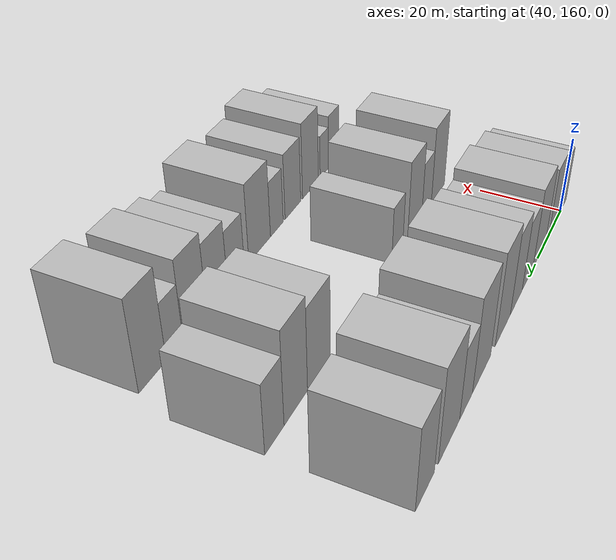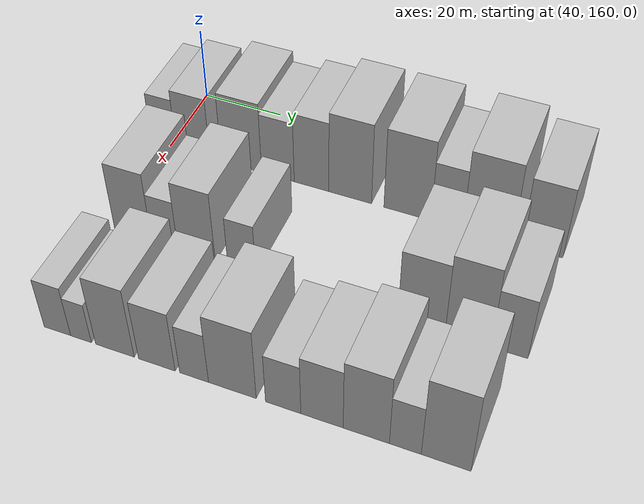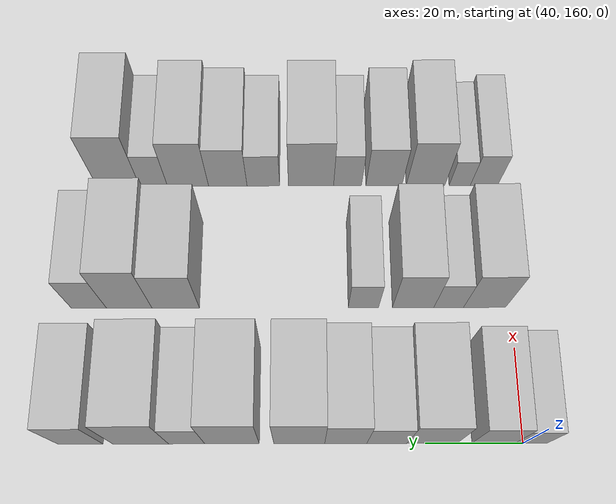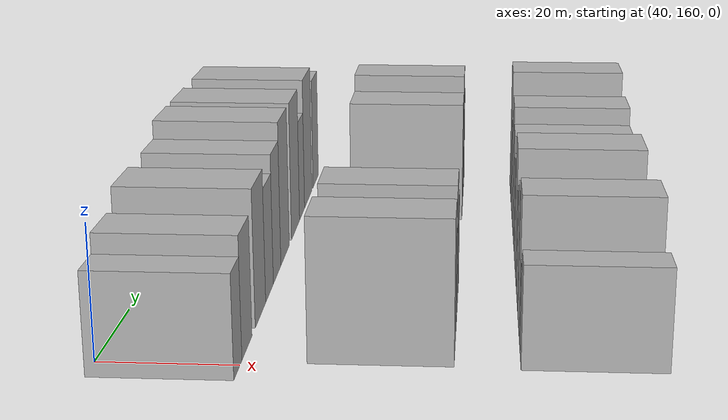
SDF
<sdf version="1.6">
 <world name="default">
  <model name="building_58">
   <static>1</static>
   <pose>50.0000 158.2829 0 0.000000 0.000000 0.000000</pose>
   <link name="link">
    <pose>0 0 7.50 0 0 0</pose>
    <collision name="collision"><geometry><box><size>20.0000 6.6665 15.0000</size></box></geometry></collision>
    <visual name="visual">
     <cast_shadows>0</cast_shadows>
     <geometry><box><size>20.0000 6.6665 15.0000</size></box></geometry>
     <material>
      <script>
       <uri>model://HANNAS_wall/materials/scripts</uri>
       <uri>model://HANNAS_wall/materials/textures</uri>
       <name>vrc/HANNAS_wall</name>
      </script>
     </material>
    </visual>
   </link>
  </model>
  <model name="building_59">
   <static>1</static>
   <pose>50.0000 166.0551 0 0.000000 0.000000 0.000000</pose>
   <link name="link">
    <pose>0 0 9.00 0 0 0</pose>
    <collision name="collision"><geometry><box><size>20.0000 8.8780 18.0000</size></box></geometry></collision>
    <visual name="visual">
     <cast_shadows>0</cast_shadows>
     <geometry><box><size>20.0000 8.8780 18.0000</size></box></geometry>
     <material>
      <script>
       <uri>model://HANNAS_wall/materials/scripts</uri>
       <uri>model://HANNAS_wall/materials/textures</uri>
       <name>vrc/HANNAS_wall</name>
      </script>
     </material>
    </visual>
   </link>
  </model>
  <model name="building_60">
   <static>1</static>
   <pose>50.0000 178.6705 0 0.000000 0.000000 0.000000</pose>
   <link name="link">
    <pose>0 0 10.50 0 0 0</pose>
    <collision name="collision"><geometry><box><size>20.0000 10.3527 21.0000</size></box></geometry></collision>
    <visual name="visual">
     <cast_shadows>0</cast_shadows>
     <geometry><box><size>20.0000 10.3527 21.0000</size></box></geometry>
     <material>
      <script>
       <uri>model://HANNAS_wall/materials/scripts</uri>
       <uri>model://HANNAS_wall/materials/textures</uri>
       <name>vrc/HANNAS_wall</name>
      </script>
     </material>
    </visual>
   </link>
  </model>
  <model name="building_61">
   <static>1</static>
   <pose>50.0000 187.9829 0 0.000000 0.000000 0.000000</pose>
   <link name="link">
    <pose>0 0 9.00 0 0 0</pose>
    <collision name="collision"><geometry><box><size>20.0000 8.2720 18.0000</size></box></geometry></collision>
    <visual name="visual">
     <cast_shadows>0</cast_shadows>
     <geometry><box><size>20.0000 8.2720 18.0000</size></box></geometry>
     <material>
      <script>
       <uri>model://HANNAS_wall/materials/scripts</uri>
       <uri>model://HANNAS_wall/materials/textures</uri>
       <name>vrc/HANNAS_wall</name>
      </script>
     </material>
    </visual>
   </link>
  </model>
  <model name="building_62">
   <static>1</static>
   <pose>50.0000 196.4425 0 0.000000 0.000000 0.000000</pose>
   <link name="link">
    <pose>0 0 10.50 0 0 0</pose>
    <collision name="collision"><geometry><box><size>20.0000 8.6472 21.0000</size></box></geometry></collision>
    <visual name="visual">
     <cast_shadows>0</cast_shadows>
     <geometry><box><size>20.0000 8.6472 21.0000</size></box></geometry>
     <material>
      <script>
       <uri>model://HANNAS_wall/materials/scripts</uri>
       <uri>model://HANNAS_wall/materials/textures</uri>
       <name>vrc/HANNAS_wall</name>
      </script>
     </material>
    </visual>
   </link>
  </model>
  <model name="building_63">
   <static>1</static>
   <pose>50.0000 205.9743 0 0.000000 0.000000 0.000000</pose>
   <link name="link">
    <pose>0 0 12.00 0 0 0</pose>
    <collision name="collision"><geometry><box><size>20.0000 10.4166 24.0000</size></box></geometry></collision>
    <visual name="visual">
     <cast_shadows>0</cast_shadows>
     <geometry><box><size>20.0000 10.4166 24.0000</size></box></geometry>
     <material>
      <script>
       <uri>model://HANNAS_wall/materials/scripts</uri>
       <uri>model://HANNAS_wall/materials/textures</uri>
       <name>vrc/HANNAS_wall</name>
      </script>
     </material>
    </visual>
   </link>
  </model>
  <model name="building_64">
   <static>1</static>
   <pose>50.0000 219.7801 0 0.000000 0.000000 0.000000</pose>
   <link name="link">
    <pose>0 0 12.00 0 0 0</pose>
    <collision name="collision"><geometry><box><size>20.0000 11.1949 24.0000</size></box></geometry></collision>
    <visual name="visual">
     <cast_shadows>0</cast_shadows>
     <geometry><box><size>20.0000 11.1949 24.0000</size></box></geometry>
     <material>
      <script>
       <uri>model://HANNAS_wall/materials/scripts</uri>
       <uri>model://HANNAS_wall/materials/textures</uri>
       <name>vrc/HANNAS_wall</name>
      </script>
     </material>
    </visual>
   </link>
  </model>
  <model name="building_65">
   <static>1</static>
   <pose>50.0000 229.1070 0 0.000000 0.000000 0.000000</pose>
   <link name="link">
    <pose>0 0 9.00 0 0 0</pose>
    <collision name="collision"><geometry><box><size>20.0000 7.4590 18.0000</size></box></geometry></collision>
    <visual name="visual">
     <cast_shadows>0</cast_shadows>
     <geometry><box><size>20.0000 7.4590 18.0000</size></box></geometry>
     <material>
      <script>
       <uri>model://HANNAS_wall/materials/scripts</uri>
       <uri>model://HANNAS_wall/materials/textures</uri>
       <name>vrc/HANNAS_wall</name>
      </script>
     </material>
    </visual>
   </link>
  </model>
  <model name="building_66">
   <static>1</static>
   <pose>50.0000 238.5659 0 0.000000 0.000000 0.000000</pose>
   <link name="link">
    <pose>0 0 12.00 0 0 0</pose>
    <collision name="collision"><geometry><box><size>20.0000 11.4588 24.0000</size></box></geometry></collision>
    <visual name="visual">
     <cast_shadows>0</cast_shadows>
     <geometry><box><size>20.0000 11.4588 24.0000</size></box></geometry>
     <material>
      <script>
       <uri>model://HANNAS_wall/materials/scripts</uri>
       <uri>model://HANNAS_wall/materials/textures</uri>
       <name>vrc/HANNAS_wall</name>
      </script>
     </material>
    </visual>
   </link>
  </model>
  <model name="building_67">
   <static>1</static>
   <pose>50.0000 250.9318 0 0.000000 0.000000 0.000000</pose>
   <link name="link">
    <pose>0 0 10.50 0 0 0</pose>
    <collision name="collision"><geometry><box><size>20.0000 9.2730 21.0000</size></box></geometry></collision>
    <visual name="visual">
     <cast_shadows>0</cast_shadows>
     <geometry><box><size>20.0000 9.2730 21.0000</size></box></geometry>
     <material>
      <script>
       <uri>model://HANNAS_wall/materials/scripts</uri>
       <uri>model://HANNAS_wall/materials/textures</uri>
       <name>vrc/HANNAS_wall</name>
      </script>
     </material>
    </visual>
   </link>
  </model>
  <model name="building_130">
   <static>1</static>
   <pose>79.0000 165.6848 0 0.000000 0.000000 0.000000</pose>
   <link name="link">
    <pose>0 0 10.50 0 0 0</pose>
    <collision name="collision"><geometry><box><size>20.0000 9.1607 21.0000</size></box></geometry></collision>
    <visual name="visual">
     <cast_shadows>0</cast_shadows>
     <geometry><box><size>20.0000 9.1607 21.0000</size></box></geometry>
     <material>
      <script>
       <uri>model://HANNAS_wall/materials/scripts</uri>
       <uri>model://HANNAS_wall/materials/textures</uri>
       <name>vrc/HANNAS_wall</name>
      </script>
     </material>
    </visual>
   </link>
  </model>
  <model name="building_131">
   <static>1</static>
   <pose>79.0000 173.4931 0 0.000000 0.000000 0.000000</pose>
   <link name="link">
    <pose>0 0 7.50 0 0 0</pose>
    <collision name="collision"><geometry><box><size>20.0000 6.4560 15.0000</size></box></geometry></collision>
    <visual name="visual">
     <cast_shadows>0</cast_shadows>
     <geometry><box><size>20.0000 6.4560 15.0000</size></box></geometry>
     <material>
      <script>
       <uri>model://HANNAS_wall/materials/scripts</uri>
       <uri>model://HANNAS_wall/materials/textures</uri>
       <name>vrc/HANNAS_wall</name>
      </script>
     </material>
    </visual>
   </link>
  </model>
  <model name="building_132">
   <static>1</static>
   <pose>79.0000 181.2346 0 0.000000 0.000000 0.000000</pose>
   <link name="link">
    <pose>0 0 10.50 0 0 0</pose>
    <collision name="collision"><geometry><box><size>20.0000 9.0271 21.0000</size></box></geometry></collision>
    <visual name="visual">
     <cast_shadows>0</cast_shadows>
     <geometry><box><size>20.0000 9.0271 21.0000</size></box></geometry>
     <material>
      <script>
       <uri>model://HANNAS_wall/materials/scripts</uri>
       <uri>model://HANNAS_wall/materials/textures</uri>
       <name>vrc/HANNAS_wall</name>
      </script>
     </material>
    </visual>
   </link>
  </model>
  <model name="building_133">
   <static>1</static>
   <pose>79.0000 192.0437 0 0.000000 0.000000 0.000000</pose>
   <link name="link">
    <pose>0 0 7.50 0 0 0</pose>
    <collision name="collision"><geometry><box><size>20.0000 6.5910 15.0000</size></box></geometry></collision>
    <visual name="visual">
     <cast_shadows>0</cast_shadows>
     <geometry><box><size>20.0000 6.5910 15.0000</size></box></geometry>
     <material>
      <script>
       <uri>model://HANNAS_wall/materials/scripts</uri>
       <uri>model://HANNAS_wall/materials/textures</uri>
       <name>vrc/HANNAS_wall</name>
      </script>
     </material>
    </visual>
   </link>
  </model>
  <model name="building_134">
   <static>1</static>
   <pose>79.0000 232.7946 0 0.000000 0.000000 0.000000</pose>
   <link name="link">
    <pose>0 0 10.50 0 0 0</pose>
    <collision name="collision"><geometry><box><size>20.0000 10.3036 21.0000</size></box></geometry></collision>
    <visual name="visual">
     <cast_shadows>0</cast_shadows>
     <geometry><box><size>20.0000 10.3036 21.0000</size></box></geometry>
     <material>
      <script>
       <uri>model://HANNAS_wall/materials/scripts</uri>
       <uri>model://HANNAS_wall/materials/textures</uri>
       <name>vrc/HANNAS_wall</name>
      </script>
     </material>
    </visual>
   </link>
  </model>
  <model name="building_135">
   <static>1</static>
   <pose>79.0000 242.8887 0 0.000000 0.000000 0.000000</pose>
   <link name="link">
    <pose>0 0 12.00 0 0 0</pose>
    <collision name="collision"><geometry><box><size>20.0000 9.8847 24.0000</size></box></geometry></collision>
    <visual name="visual">
     <cast_shadows>0</cast_shadows>
     <geometry><box><size>20.0000 9.8847 24.0000</size></box></geometry>
     <material>
      <script>
       <uri>model://HANNAS_wall/materials/scripts</uri>
       <uri>model://HANNAS_wall/materials/textures</uri>
       <name>vrc/HANNAS_wall</name>
      </script>
     </material>
    </visual>
   </link>
  </model>
  <model name="building_136">
   <static>1</static>
   <pose>79.0000 251.6415 0 0.000000 0.000000 0.000000</pose>
   <link name="link">
    <pose>0 0 9.00 0 0 0</pose>
    <collision name="collision"><geometry><box><size>20.0000 7.6210 18.0000</size></box></geometry></collision>
    <visual name="visual">
     <cast_shadows>0</cast_shadows>
     <geometry><box><size>20.0000 7.6210 18.0000</size></box></geometry>
     <material>
      <script>
       <uri>model://HANNAS_wall/materials/scripts</uri>
       <uri>model://HANNAS_wall/materials/textures</uri>
       <name>vrc/HANNAS_wall</name>
      </script>
     </material>
    </visual>
   </link>
  </model>
  <model name="building_204">
   <static>1</static>
   <pose>108.0000 163.6458 0 0.000000 0.000000 0.000000</pose>
   <link name="link">
    <pose>0 0 7.50 0 0 0</pose>
    <collision name="collision"><geometry><box><size>20.0000 6.2509 15.0000</size></box></geometry></collision>
    <visual name="visual">
     <cast_shadows>0</cast_shadows>
     <geometry><box><size>20.0000 6.2509 15.0000</size></box></geometry>
     <material>
      <script>
       <uri>model://HANNAS_wall/materials/scripts</uri>
       <uri>model://HANNAS_wall/materials/textures</uri>
       <name>vrc/HANNAS_wall</name>
      </script>
     </material>
    </visual>
   </link>
  </model>
  <model name="building_205">
   <static>1</static>
   <pose>108.0000 169.1932 0 0.000000 0.000000 0.000000</pose>
   <link name="link">
    <pose>0 0 6.00 0 0 0</pose>
    <collision name="collision"><geometry><box><size>20.0000 4.8438 12.0000</size></box></geometry></collision>
    <visual name="visual">
     <cast_shadows>0</cast_shadows>
     <geometry><box><size>20.0000 4.8438 12.0000</size></box></geometry>
     <material>
      <script>
       <uri>model://HANNAS_wall/materials/scripts</uri>
       <uri>model://HANNAS_wall/materials/textures</uri>
       <name>vrc/HANNAS_wall</name>
      </script>
     </material>
    </visual>
   </link>
  </model>
  <model name="building_206">
   <static>1</static>
   <pose>108.0000 177.0395 0 0.000000 0.000000 0.000000</pose>
   <link name="link">
    <pose>0 0 10.50 0 0 0</pose>
    <collision name="collision"><geometry><box><size>20.0000 8.8489 21.0000</size></box></geometry></collision>
    <visual name="visual">
     <cast_shadows>0</cast_shadows>
     <geometry><box><size>20.0000 8.8489 21.0000</size></box></geometry>
     <material>
      <script>
       <uri>model://HANNAS_wall/materials/scripts</uri>
       <uri>model://HANNAS_wall/materials/textures</uri>
       <name>vrc/HANNAS_wall</name>
      </script>
     </material>
    </visual>
   </link>
  </model>
  <model name="building_207">
   <static>1</static>
   <pose>108.0000 186.5854 0 0.000000 0.000000 0.000000</pose>
   <link name="link">
    <pose>0 0 9.00 0 0 0</pose>
    <collision name="collision"><geometry><box><size>20.0000 8.2427 18.0000</size></box></geometry></collision>
    <visual name="visual">
     <cast_shadows>0</cast_shadows>
     <geometry><box><size>20.0000 8.2427 18.0000</size></box></geometry>
     <material>
      <script>
       <uri>model://HANNAS_wall/materials/scripts</uri>
       <uri>model://HANNAS_wall/materials/textures</uri>
       <name>vrc/HANNAS_wall</name>
      </script>
     </material>
    </visual>
   </link>
  </model>
  <model name="building_208">
   <static>1</static>
   <pose>108.0000 194.8984 0 0.000000 0.000000 0.000000</pose>
   <link name="link">
    <pose>0 0 7.50 0 0 0</pose>
    <collision name="collision"><geometry><box><size>20.0000 6.3833 15.0000</size></box></geometry></collision>
    <visual name="visual">
     <cast_shadows>0</cast_shadows>
     <geometry><box><size>20.0000 6.3833 15.0000</size></box></geometry>
     <material>
      <script>
       <uri>model://HANNAS_wall/materials/scripts</uri>
       <uri>model://HANNAS_wall/materials/textures</uri>
       <name>vrc/HANNAS_wall</name>
      </script>
     </material>
    </visual>
   </link>
  </model>
  <model name="building_209">
   <static>1</static>
   <pose>108.0000 203.2568 0 0.000000 0.000000 0.000000</pose>
   <link name="link">
    <pose>0 0 10.50 0 0 0</pose>
    <collision name="collision"><geometry><box><size>20.0000 10.3335 21.0000</size></box></geometry></collision>
    <visual name="visual">
     <cast_shadows>0</cast_shadows>
     <geometry><box><size>20.0000 10.3335 21.0000</size></box></geometry>
     <material>
      <script>
       <uri>model://HANNAS_wall/materials/scripts</uri>
       <uri>model://HANNAS_wall/materials/textures</uri>
       <name>vrc/HANNAS_wall</name>
      </script>
     </material>
    </visual>
   </link>
  </model>
  <model name="building_210">
   <static>1</static>
   <pose>108.0000 214.1605 0 0.000000 0.000000 0.000000</pose>
   <link name="link">
    <pose>0 0 7.50 0 0 0</pose>
    <collision name="collision"><geometry><box><size>20.0000 7.4741 15.0000</size></box></geometry></collision>
    <visual name="visual">
     <cast_shadows>0</cast_shadows>
     <geometry><box><size>20.0000 7.4741 15.0000</size></box></geometry>
     <material>
      <script>
       <uri>model://HANNAS_wall/materials/scripts</uri>
       <uri>model://HANNAS_wall/materials/textures</uri>
       <name>vrc/HANNAS_wall</name>
      </script>
     </material>
    </visual>
   </link>
  </model>
  <model name="building_211">
   <static>1</static>
   <pose>108.0000 222.2952 0 0.000000 0.000000 0.000000</pose>
   <link name="link">
    <pose>0 0 9.00 0 0 0</pose>
    <collision name="collision"><geometry><box><size>20.0000 8.7953 18.0000</size></box></geometry></collision>
    <visual name="visual">
     <cast_shadows>0</cast_shadows>
     <geometry><box><size>20.0000 8.7953 18.0000</size></box></geometry>
     <material>
      <script>
       <uri>model://HANNAS_wall/materials/scripts</uri>
       <uri>model://HANNAS_wall/materials/textures</uri>
       <name>vrc/HANNAS_wall</name>
      </script>
     </material>
    </visual>
   </link>
  </model>
  <model name="building_212">
   <static>1</static>
   <pose>108.0000 231.4016 0 0.000000 0.000000 0.000000</pose>
   <link name="link">
    <pose>0 0 10.50 0 0 0</pose>
    <collision name="collision"><geometry><box><size>20.0000 9.4175 21.0000</size></box></geometry></collision>
    <visual name="visual">
     <cast_shadows>0</cast_shadows>
     <geometry><box><size>20.0000 9.4175 21.0000</size></box></geometry>
     <material>
      <script>
       <uri>model://HANNAS_wall/materials/scripts</uri>
       <uri>model://HANNAS_wall/materials/textures</uri>
       <name>vrc/HANNAS_wall</name>
      </script>
     </material>
    </visual>
   </link>
  </model>
  <model name="building_213">
   <static>1</static>
   <pose>108.0000 239.2914 0 0.000000 0.000000 0.000000</pose>
   <link name="link">
    <pose>0 0 7.50 0 0 0</pose>
    <collision name="collision"><geometry><box><size>20.0000 6.3620 15.0000</size></box></geometry></collision>
    <visual name="visual">
     <cast_shadows>0</cast_shadows>
     <geometry><box><size>20.0000 6.3620 15.0000</size></box></geometry>
     <material>
      <script>
       <uri>model://HANNAS_wall/materials/scripts</uri>
       <uri>model://HANNAS_wall/materials/textures</uri>
       <name>vrc/HANNAS_wall</name>
      </script>
     </material>
    </visual>
   </link>
  </model>
  <model name="building_214">
   <static>1</static>
   <pose>108.0000 247.3641 0 0.000000 0.000000 0.000000</pose>
   <link name="link">
    <pose>0 0 12.00 0 0 0</pose>
    <collision name="collision"><geometry><box><size>20.0000 9.7834 24.0000</size></box></geometry></collision>
    <visual name="visual">
     <cast_shadows>0</cast_shadows>
     <geometry><box><size>20.0000 9.7834 24.0000</size></box></geometry>
     <material>
      <script>
       <uri>model://HANNAS_wall/materials/scripts</uri>
       <uri>model://HANNAS_wall/materials/textures</uri>
       <name>vrc/HANNAS_wall</name>
      </script>
     </material>
    </visual>
   </link>
  </model>
 </world>
</sdf>
